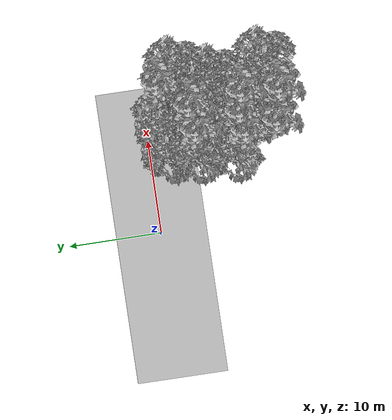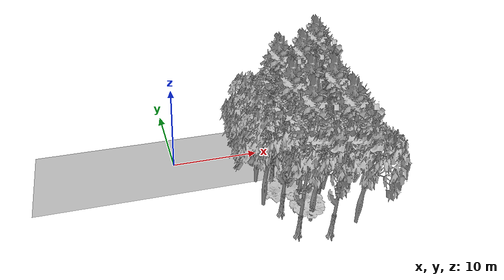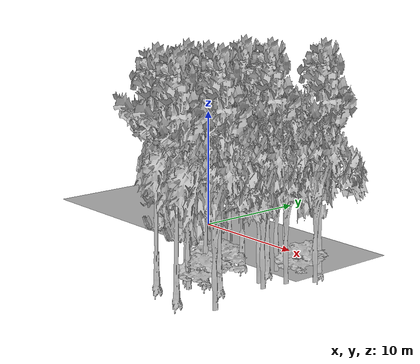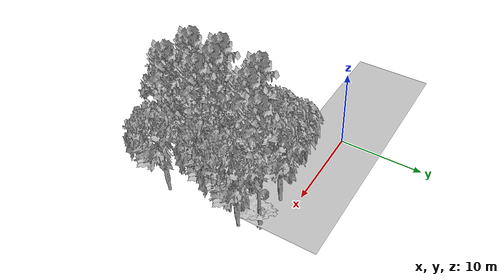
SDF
<sdf version="1.7">
 <world name="default">
  <model name="ground_plane">
   <static>1</static>
   <link name="link">
    <collision name="collision">
     <pose>-50 0 0 0 -0 0</pose>
     <geometry><plane><normal>0 0 1</normal><size>100 100</size></plane></geometry>
     <surface><contact><ode><min_depth>0.01</min_depth><max_vel>0</max_vel></ode></contact></surface>
    </collision>
    <visual name="grass">
     <cast_shadows>0</cast_shadows>
     <geometry>
      <mesh>
       <scale>0.5814285714285714 0.18142857142857144 0.1</scale>
       <uri>file://grass_plane/meshes/grass_plane.dae</uri>
      </mesh>
     </geometry>
    </visual>
   </link>
  </model>
  <model name="Tree 41">
   <static>1</static>
   <pose>12.580195182566534 -4.8558555903924585 0 1.57079 -0 0</pose>
   <link name="link">
    <collision name="collision">
     <geometry><mesh><scale>3.5 5 3.5</scale><uri>model://tree_9/meshes/tree_9.obj</uri></mesh></geometry>
    </collision>
    <visual name="visual">
     <geometry><mesh><scale>3.5 5 3.5</scale><uri>model://tree_9/meshes/tree_9.obj</uri></mesh></geometry>
    </visual>
   </link>
  </model>
  <model name="Tree 49">
   <static>1</static>
   <pose>15.092436241284524 -7.7487654156353125 0 1.57079 -0 0</pose>
   <link name="link">
    <collision name="collision">
     <geometry><mesh><scale>3.5 5 3.5</scale><uri>model://tree_2/meshes/tree_2.obj</uri></mesh></geometry>
    </collision>
    <visual name="visual">
     <geometry><mesh><scale>3.5 5 3.5</scale><uri>model://tree_2/meshes/tree_2.obj</uri></mesh></geometry>
    </visual>
   </link>
  </model>
  <model name="Tree 57">
   <static>1</static>
   <pose>16.511785366607427 -3.8767310046198293 0 1.57079 -0 0</pose>
   <link name="link">
    <collision name="collision">
     <geometry><mesh><scale>3.5 5 3.5</scale><uri>model://tree_2/meshes/tree_2.obj</uri></mesh></geometry>
    </collision>
    <visual name="visual">
     <geometry><mesh><scale>3.5 5 3.5</scale><uri>model://tree_2/meshes/tree_2.obj</uri></mesh></geometry>
    </visual>
   </link>
  </model>
  <model name="Tree 157">
   <static>1</static>
   <pose>11.342202196364916 -1.8404205262889288 0 1.57079 -0 0</pose>
   <link name="link">
    <collision name="collision">
     <geometry><mesh><scale>3.5 5 3.5</scale><uri>model://tree_2/meshes/tree_2.obj</uri></mesh></geometry>
    </collision>
    <visual name="visual">
     <geometry><mesh><scale>3.5 5 3.5</scale><uri>model://tree_2/meshes/tree_2.obj</uri></mesh></geometry>
    </visual>
   </link>
  </model>
  <model name="Tree 169">
   <static>1</static>
   <pose>13.271897820831654 -10.189144921491744 0 1.57079 -0 0</pose>
   <link name="link">
    <collision name="collision">
     <geometry><mesh><scale>3.5 5 3.5</scale><uri>model://tree_9/meshes/tree_9.obj</uri></mesh></geometry>
    </collision>
    <visual name="visual">
     <geometry><mesh><scale>3.5 5 3.5</scale><uri>model://tree_9/meshes/tree_9.obj</uri></mesh></geometry>
    </visual>
   </link>
  </model>
  <model name="Tree 171">
   <static>1</static>
   <pose>7.90945519018652 -8.57334552952483 0 1.57079 -0 0</pose>
   <link name="link">
    <collision name="collision">
     <geometry><mesh><scale>3.5 5 3.5</scale><uri>model://tree_2/meshes/tree_2.obj</uri></mesh></geometry>
    </collision>
    <visual name="visual">
     <geometry><mesh><scale>3.5 5 3.5</scale><uri>model://tree_2/meshes/tree_2.obj</uri></mesh></geometry>
    </visual>
   </link>
  </model>
  <model name="Tree 174">
   <static>1</static>
   <pose>14.383246090114973 -3.157802145669052 0 1.57079 -0 0</pose>
   <link name="link">
    <collision name="collision">
     <geometry><mesh><scale>4 2.5 4</scale><uri>model://tree_1/meshes/tree_1.obj</uri></mesh></geometry>
    </collision>
    <visual name="visual">
     <geometry><mesh><scale>4 2.5 4</scale><uri>model://tree_1/meshes/tree_1.obj</uri></mesh></geometry>
    </visual>
   </link>
  </model>
  <model name="Tree 222">
   <static>1</static>
   <pose>15.34774393855814 -5.700917012937536 0 1.57079 -0 0</pose>
   <link name="link">
    <collision name="collision">
     <geometry><mesh><scale>3.5 5 3.5</scale><uri>model://tree_2/meshes/tree_2.obj</uri></mesh></geometry>
    </collision>
    <visual name="visual">
     <geometry><mesh><scale>3.5 5 3.5</scale><uri>model://tree_2/meshes/tree_2.obj</uri></mesh></geometry>
    </visual>
   </link>
  </model>
  <model name="Tree 226">
   <static>1</static>
   <pose>11.543099734762393 -8.814809215109609 0 1.57079 -0 0</pose>
   <link name="link">
    <collision name="collision">
     <geometry><mesh><scale>3.5 5 3.5</scale><uri>model://tree_2/meshes/tree_2.obj</uri></mesh></geometry>
    </collision>
    <visual name="visual">
     <geometry><mesh><scale>3.5 5 3.5</scale><uri>model://tree_2/meshes/tree_2.obj</uri></mesh></geometry>
    </visual>
   </link>
  </model>
  <model name="Tree 269">
   <static>1</static>
   <pose>10.414513208374906 -8.251072533963697 0 1.57079 -0 0</pose>
   <link name="link">
    <collision name="collision">
     <geometry><mesh><scale>3 2 3</scale><uri>model://tree_3/meshes/tree_3.obj</uri></mesh></geometry>
    </collision>
    <visual name="visual">
     <geometry><mesh><scale>3 2 3</scale><uri>model://tree_3/meshes/tree_3.obj</uri></mesh></geometry>
    </visual>
   </link>
  </model>
  <model name="Tree 275">
   <static>1</static>
   <pose>16.185647773937745 -13.162783298852895 0 1.57079 -0 0</pose>
   <link name="link">
    <collision name="collision">
     <geometry><mesh><scale>3.5 5 3.5</scale><uri>model://tree_2/meshes/tree_2.obj</uri></mesh></geometry>
    </collision>
    <visual name="visual">
     <geometry><mesh><scale>3.5 5 3.5</scale><uri>model://tree_2/meshes/tree_2.obj</uri></mesh></geometry>
    </visual>
   </link>
  </model>
  <model name="Tree 293">
   <static>1</static>
   <pose>14.01076975991068 -7.10691126753631 0 1.57079 -0 0</pose>
   <link name="link">
    <collision name="collision">
     <geometry><mesh><scale>3.5 5 3.5</scale><uri>model://tree_2/meshes/tree_2.obj</uri></mesh></geometry>
    </collision>
    <visual name="visual">
     <geometry><mesh><scale>3.5 5 3.5</scale><uri>model://tree_2/meshes/tree_2.obj</uri></mesh></geometry>
    </visual>
   </link>
  </model>
  <model name="Tree 308">
   <static>1</static>
   <pose>12.818183813797617 -4.241475817589844 0 1.57079 -0 0</pose>
   <link name="link">
    <collision name="collision">
     <geometry><mesh><scale>3.5 5 3.5</scale><uri>model://tree_2/meshes/tree_2.obj</uri></mesh></geometry>
    </collision>
    <visual name="visual">
     <geometry><mesh><scale>3.5 5 3.5</scale><uri>model://tree_2/meshes/tree_2.obj</uri></mesh></geometry>
    </visual>
   </link>
  </model>
  <model name="Tree 313">
   <static>1</static>
   <pose>8.71711519546676 -2.1136859725868575 0 1.57079 -0 0</pose>
   <link name="link">
    <collision name="collision">
     <geometry><mesh><scale>3.5 5 3.5</scale><uri>model://tree_2/meshes/tree_2.obj</uri></mesh></geometry>
    </collision>
    <visual name="visual">
     <geometry><mesh><scale>3.5 5 3.5</scale><uri>model://tree_2/meshes/tree_2.obj</uri></mesh></geometry>
    </visual>
   </link>
  </model>
  <model name="Tree 320">
   <static>1</static>
   <pose>10.116879674506698 -5.178072431845816 0 1.57079 -0 0</pose>
   <link name="link">
    <collision name="collision">
     <geometry><mesh><scale>3.5 5 3.5</scale><uri>model://tree_9/meshes/tree_9.obj</uri></mesh></geometry>
    </collision>
    <visual name="visual">
     <geometry><mesh><scale>3.5 5 3.5</scale><uri>model://tree_9/meshes/tree_9.obj</uri></mesh></geometry>
    </visual>
   </link>
  </model>
  <model name="Tree 329">
   <static>1</static>
   <pose>11.73913717431629 -10.344374418045211 0 1.57079 -0 0</pose>
   <link name="link">
    <collision name="collision">
     <geometry><mesh><scale>4 2.5 4</scale><uri>model://tree_1/meshes/tree_1.obj</uri></mesh></geometry>
    </collision>
    <visual name="visual">
     <geometry><mesh><scale>4 2.5 4</scale><uri>model://tree_1/meshes/tree_1.obj</uri></mesh></geometry>
    </visual>
   </link>
  </model>
  <model name="Tree 348">
   <static>1</static>
   <pose>9.970807832649122 -13.28405043009019 0 1.57079 -0 0</pose>
   <link name="link">
    <collision name="collision">
     <geometry><mesh><scale>3.5 5 3.5</scale><uri>model://tree_9/meshes/tree_9.obj</uri></mesh></geometry>
    </collision>
    <visual name="visual">
     <geometry><mesh><scale>3.5 5 3.5</scale><uri>model://tree_9/meshes/tree_9.obj</uri></mesh></geometry>
    </visual>
   </link>
  </model>
  <model name="Tree 363">
   <static>1</static>
   <pose>15.205830951142374 -2.029319451726108 0 1.57079 -0 0</pose>
   <link name="link">
    <collision name="collision">
     <geometry><mesh><scale>3.5 5 3.5</scale><uri>model://tree_9/meshes/tree_9.obj</uri></mesh></geometry>
    </collision>
    <visual name="visual">
     <geometry><mesh><scale>3.5 5 3.5</scale><uri>model://tree_9/meshes/tree_9.obj</uri></mesh></geometry>
    </visual>
   </link>
  </model>
  <model name="Tree 390">
   <static>1</static>
   <pose>13.120698172011352 -13.96500092775088 0 1.57079 -0 0</pose>
   <link name="link">
    <collision name="collision">
     <geometry><mesh><scale>3.5 5 3.5</scale><uri>model://tree_9/meshes/tree_9.obj</uri></mesh></geometry>
    </collision>
    <visual name="visual">
     <geometry><mesh><scale>3.5 5 3.5</scale><uri>model://tree_9/meshes/tree_9.obj</uri></mesh></geometry>
    </visual>
   </link>
  </model>
  <model name="Tree 401">
   <static>1</static>
   <pose>11.782235094165777 -11.892734719686493 0 1.57079 -0 0</pose>
   <link name="link">
    <collision name="collision">
     <geometry><mesh><scale>3.5 5 3.5</scale><uri>model://tree_2/meshes/tree_2.obj</uri></mesh></geometry>
    </collision>
    <visual name="visual">
     <geometry><mesh><scale>3.5 5 3.5</scale><uri>model://tree_2/meshes/tree_2.obj</uri></mesh></geometry>
    </visual>
   </link>
  </model>
  <model name="Tree 424">
   <static>1</static>
   <pose>8.278409094646513 -4.885784247521958 0 1.57079 -0 0</pose>
   <link name="link">
    <collision name="collision">
     <geometry><mesh><scale>3.5 5 3.5</scale><uri>model://tree_2/meshes/tree_2.obj</uri></mesh></geometry>
    </collision>
    <visual name="visual">
     <geometry><mesh><scale>3.5 5 3.5</scale><uri>model://tree_2/meshes/tree_2.obj</uri></mesh></geometry>
    </visual>
   </link>
  </model>
  <model name="Tree 505">
   <static>1</static>
   <pose>9.409714814945339 -10.085661811498339 0 1.57079 -0 0</pose>
   <link name="link">
    <collision name="collision">
     <geometry><mesh><scale>3.5 5 3.5</scale><uri>model://tree_9/meshes/tree_9.obj</uri></mesh></geometry>
    </collision>
    <visual name="visual">
     <geometry><mesh><scale>3.5 5 3.5</scale><uri>model://tree_9/meshes/tree_9.obj</uri></mesh></geometry>
    </visual>
   </link>
  </model>
  <model name="Tree 529">
   <static>1</static>
   <pose>11.280101215511465 -9.79711301221491 0 1.57079 -0 0</pose>
   <link name="link">
    <collision name="collision">
     <geometry><mesh><scale>3.5 5 3.5</scale><uri>model://tree_9/meshes/tree_9.obj</uri></mesh></geometry>
    </collision>
    <visual name="visual">
     <geometry><mesh><scale>3.5 5 3.5</scale><uri>model://tree_9/meshes/tree_9.obj</uri></mesh></geometry>
    </visual>
   </link>
  </model>
 </world>
</sdf>
